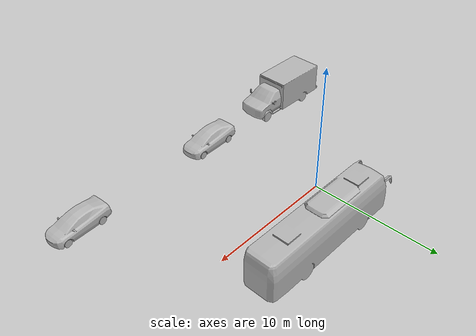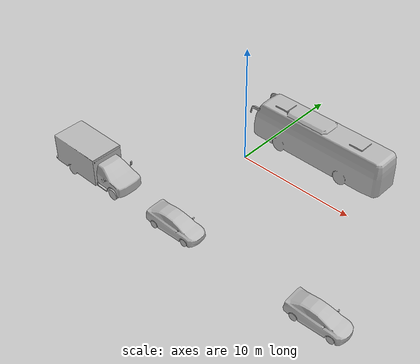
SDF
<sdf version="1.6">
 <world name="default">
  <model name="ambulance_clone">
   <static>1</static>
   <link name="link">
    <collision name="collision">
     <geometry>
      <mesh><scale>0.0254 0.0254 0.0254</scale><uri>model://ambulance/meshes/ambulance.obj</uri></mesh>
     </geometry>
    </collision>
    <visual name="visual">
     <geometry>
      <mesh><scale>0.0254 0.0254 0.0254</scale><uri>model://ambulance/meshes/ambulance.obj</uri></mesh>
     </geometry>
    </visual>
   </link>
   <pose>-6.83398 -9.26281 0 0 -0 1.5601</pose>
  </model>
  <model name="bus">
   <static>1</static>
   <link name="link">
    <collision name="collision">
     <geometry><mesh><scale>0.01 0.01 0.01</scale><uri>model://bus/meshes/bus.obj</uri></mesh></geometry>
    </collision>
    <visual name="visual">
     <geometry><mesh><scale>0.01 0.01 0.01</scale><uri>model://bus/meshes/bus.obj</uri></mesh></geometry>
    </visual>
   </link>
   <pose>4.58331 3.71999 0 0 0 -1.57803</pose>
  </model>
  <model name="prius">
   <link name="base_link">
    <inertial>
     <mass>1</mass>
     <inertia><ixx>0.001</ixx><ixy>0</ixy><ixz>0</ixz><iyy>0.001</iyy><iyz>0</iyz><izz>0.001</izz></inertia>
    </inertial>
   </link>
   <link name="chassis">
    <pose>1.45 0 0 0 -0 1.57</pose>
    <inertial>
     <pose>-0 -0.002735 0.483209 0 -0 1.5708</pose>
     <mass>1371</mass>
     <inertia>
      <ixx>2591.3</ixx>
      <ixy>0.000184475</ixy>
      <ixz>-0.702035</ixz>
      <iyy>651.702</iyy>
      <iyz>2.57872e-06</iyz>
      <izz>2744.57</izz>
     </inertia>
    </inertial>
    <collision name="chassis_fixed_joint_lump__back_bumper_collision_8">
     <pose>0 2.05445 0.57787 0 -0 0</pose>
     <geometry><box><size>1.78165 0.512093 0.581427</size></box></geometry>
    </collision>
    <visual name="chassis_visual">
     <geometry>
      <mesh>
       <scale>0.01 0.01 0.01</scale>
       <uri>/home/kostas/datmo_ws/src/car_demo-master/prius_description/meshes/hybrid_body.obj</uri>
      </mesh>
     </geometry>
    </visual>
    <sensor name="center_laser_sensor" type="ray">
     <ray>
      <scan>
       <horizontal>
        <samples>360</samples>
        <resolution>1</resolution>
        <min_angle>-3.14</min_angle>
        <max_angle>3.14</max_angle>
       </horizontal>
       <vertical><samples>1</samples><min_angle>0</min_angle><max_angle>0</max_angle></vertical>
      </scan>
      <range><min>0.2</min><max>50</max><resolution>0.01</resolution></range>
     </ray>
     <plugin name="center_laser" filename="libgazebo_ros_laser.so">
      <topicName>/scan</topicName>
      <frameName>center_laser_link</frameName>
      <robotNamespace>/</robotNamespace>
     </plugin>
     <always_on>1</always_on>
     <update_rate>12</update_rate>
     <visualize>0</visualize>
     <pose>0 0.4 0.9 0 0 -1.5707</pose>
    </sensor>
   </link>
   <joint name="base_link_connection" type="revolute">
    <child>chassis</child>
    <parent>base_link</parent>
    <axis>
     <limit><lower>0</lower><upper>0</upper></limit>
     <dynamics>
      <damping>0</damping>
      <friction>0</friction>
      <spring_reference>0</spring_reference>
      <spring_stiffness>0</spring_stiffness>
     </dynamics>
     <use_parent_model_frame>1</use_parent_model_frame>
     <xyz>0 0 1</xyz>
    </axis>
    <physics><ode><limit><cfm>0</cfm><erp>0.2</erp></limit></ode></physics>
   </joint>
   <link name="fl_axle">
    <pose>2.86061 0.765877 0.3 0 -0 1.57</pose>
    <inertial>
     <mass>1</mass>
     <inertia><ixx>0.004</ixx><ixy>0</ixy><ixz>0</ixz><iyy>0.004</iyy><iyz>0</iyz><izz>0.004</izz></inertia>
    </inertial>
   </link>
   <joint name="front_left_steer_joint" type="revolute">
    <child>fl_axle</child>
    <parent>chassis</parent>
    <axis>
     <xyz>0 0 1</xyz>
     <limit><lower>-1e+16</lower><upper>1e+16</upper></limit>
     <dynamics><spring_reference>0</spring_reference><spring_stiffness>0</spring_stiffness></dynamics>
     <use_parent_model_frame>1</use_parent_model_frame>
    </axis>
   </joint>
   <link name="front_left_wheel">
    <pose>2.86061 0.765877 0.3 0 -0 1.57</pose>
    <inertial>
     <mass>11</mass>
     <inertia>
      <ixx>0.586312</ixx>
      <ixy>0</ixy>
      <ixz>0</ixz>
      <iyy>0.335529</iyy>
      <iyz>0</iyz>
      <izz>0.335529</izz>
     </inertia>
    </inertial>
    <collision name="front_left_wheel_collision_collision">
     <geometry><sphere><radius>0.31265</radius></sphere></geometry>
     <surface>
      <contact><ode><kp>1e+08</kp><min_depth>0.005</min_depth></ode></contact>
      <friction><ode><mu>0.9</mu><mu2>0.9</mu2></ode></friction>
     </surface>
    </collision>
    <visual name="front_left_wheel_visual">
     <geometry>
      <mesh>
       <scale>0.01 0.01 0.01</scale>
       <uri>/home/kostas/datmo_ws/src/car_demo-master/prius_description/meshes/wheel.obj</uri>
      </mesh>
     </geometry>
     <material><script><uri>__default__</uri><name>__default__</name></script></material>
    </visual>
   </link>
   <joint name="front_left_wheel_joint" type="revolute">
    <child>front_left_wheel</child>
    <parent>fl_axle</parent>
    <axis>
     <xyz>0.000796 1 0</xyz>
     <limit><lower>-1e+16</lower><upper>1e+16</upper></limit>
     <dynamics><spring_reference>0</spring_reference><spring_stiffness>0</spring_stiffness></dynamics>
     <use_parent_model_frame>1</use_parent_model_frame>
    </axis>
   </joint>
   <link name="fr_axle">
    <pose>2.85939 -0.768123 0.3 0 -0 1.57</pose>
    <inertial>
     <mass>1</mass>
     <inertia><ixx>0.004</ixx><ixy>0</ixy><ixz>0</ixz><iyy>0.004</iyy><iyz>0</iyz><izz>0.004</izz></inertia>
    </inertial>
   </link>
   <joint name="front_right_steer_joint" type="revolute">
    <child>fr_axle</child>
    <parent>chassis</parent>
    <axis>
     <xyz>0 0 1</xyz>
     <limit><lower>-1e+16</lower><upper>1e+16</upper></limit>
     <dynamics><spring_reference>0</spring_reference><spring_stiffness>0</spring_stiffness></dynamics>
     <use_parent_model_frame>1</use_parent_model_frame>
    </axis>
   </joint>
   <link name="front_right_wheel">
    <pose>2.85939 -0.768123 0.3 0 -0 1.57</pose>
    <inertial>
     <mass>11</mass>
     <inertia>
      <ixx>0.586312</ixx>
      <ixy>0</ixy>
      <ixz>0</ixz>
      <iyy>0.335529</iyy>
      <iyz>0</iyz>
      <izz>0.335529</izz>
     </inertia>
    </inertial>
    <collision name="front_right_wheel_collision_collision">
     <geometry><sphere><radius>0.31265</radius></sphere></geometry>
     <surface>
      <contact><ode><kp>1e+08</kp><min_depth>0.005</min_depth></ode></contact>
      <friction><ode><mu>0.9</mu><mu2>0.9</mu2></ode></friction>
     </surface>
    </collision>
    <visual name="front_right_wheel_visual">
     <geometry>
      <mesh>
       <scale>0.01 0.01 0.01</scale>
       <uri>/home/kostas/datmo_ws/src/car_demo-master/prius_description/meshes/wheel.obj</uri>
      </mesh>
     </geometry>
     <material><script><uri>__default__</uri><name>__default__</name></script></material>
    </visual>
   </link>
   <joint name="front_right_wheel_joint" type="revolute">
    <child>front_right_wheel</child>
    <parent>fr_axle</parent>
    <axis>
     <xyz>0.000796 1 0</xyz>
     <limit><lower>-1e+16</lower><upper>1e+16</upper></limit>
     <dynamics><spring_reference>0</spring_reference><spring_stiffness>0</spring_stiffness></dynamics>
     <use_parent_model_frame>1</use_parent_model_frame>
    </axis>
   </joint>
   <link name="rear_left_wheel">
    <pose>0.000632 0.794154 0.3 0 -0 1.57</pose>
    <inertial>
     <mass>11</mass>
     <inertia>
      <ixx>0.586312</ixx>
      <ixy>0</ixy>
      <ixz>0</ixz>
      <iyy>0.335529</iyy>
      <iyz>0</iyz>
      <izz>0.335529</izz>
     </inertia>
    </inertial>
    <collision name="rear_left_wheel_collision_collision">
     <geometry><sphere><radius>0.31265</radius></sphere></geometry>
     <surface>
      <contact><ode><kp>1e+08</kp><min_depth>0.005</min_depth></ode></contact>
      <friction><ode><mu>0.9</mu><mu2>0.9</mu2></ode></friction>
     </surface>
    </collision>
    <visual name="rear_left_wheel_visual">
     <geometry>
      <mesh>
       <scale>0.01 0.01 0.01</scale>
       <uri>/home/kostas/datmo_ws/src/car_demo-master/prius_description/meshes/wheel.obj</uri>
      </mesh>
     </geometry>
     <material><script><uri>__default__</uri><name>__default__</name></script></material>
    </visual>
   </link>
   <joint name="rear_left_wheel_joint" type="revolute">
    <child>rear_left_wheel</child>
    <parent>chassis</parent>
    <axis>
     <xyz>0.000796 1 0</xyz>
     <limit><lower>-1e+16</lower><upper>1e+16</upper></limit>
     <dynamics><spring_reference>0</spring_reference><spring_stiffness>0</spring_stiffness></dynamics>
     <use_parent_model_frame>1</use_parent_model_frame>
    </axis>
   </joint>
   <link name="rear_right_wheel">
    <pose>-0.000631 -0.791845 0.3 0 -0 1.57</pose>
    <inertial>
     <mass>11</mass>
     <inertia>
      <ixx>0.586312</ixx>
      <ixy>0</ixy>
      <ixz>0</ixz>
      <iyy>0.335529</iyy>
      <iyz>0</iyz>
      <izz>0.335529</izz>
     </inertia>
    </inertial>
    <collision name="rear_right_wheel_collision_collision">
     <geometry><sphere><radius>0.31265</radius></sphere></geometry>
     <surface>
      <contact><ode><kp>1e+08</kp><min_depth>0.005</min_depth></ode></contact>
      <friction><ode><mu>0.9</mu><mu2>0.9</mu2></ode></friction>
     </surface>
    </collision>
    <visual name="rear_right_wheel_visual">
     <geometry>
      <mesh>
       <scale>0.01 0.01 0.01</scale>
       <uri>/home/kostas/datmo_ws/src/car_demo-master/prius_description/meshes/wheel.obj</uri>
      </mesh>
     </geometry>
     <material><script><uri>__default__</uri><name>__default__</name></script></material>
    </visual>
   </link>
   <joint name="rear_right_wheel_joint" type="revolute">
    <child>rear_right_wheel</child>
    <parent>chassis</parent>
    <axis>
     <xyz>0.000796 1 0</xyz>
     <limit><lower>-1e+16</lower><upper>1e+16</upper></limit>
     <dynamics><spring_reference>0</spring_reference><spring_stiffness>0</spring_stiffness></dynamics>
     <use_parent_model_frame>1</use_parent_model_frame>
    </axis>
   </joint>
   <link name="steering_wheel">
    <pose>2.07815 0.357234 0.988243 -1.3021 0 1.57</pose>
    <inertial>
     <mass>1</mass>
     <inertia><ixx>0.145833</ixx><ixy>0</ixy><ixz>0</ixz><iyy>0.145833</iyy><iyz>0</iyz><izz>0.125</izz></inertia>
    </inertial>
    <visual name="steering_wheel_visual">
     <pose>0 0 0 1.3021 -0 0</pose>
     <geometry>
      <mesh>
       <scale>0.01 0.01 0.01</scale>
       <uri>/home/kostas/datmo_ws/src/car_demo-master/prius_description/meshes/steering_wheel.obj</uri>
      </mesh>
     </geometry>
    </visual>
   </link>
   <joint name="steering_joint" type="revolute">
    <child>steering_wheel</child>
    <parent>chassis</parent>
    <axis>
     <xyz>-0.964118 0.000768 0.265474</xyz>
     <limit><lower>-1e+16</lower><upper>1e+16</upper></limit>
     <dynamics><spring_reference>0</spring_reference><spring_stiffness>0</spring_stiffness></dynamics>
     <use_parent_model_frame>1</use_parent_model_frame>
    </axis>
   </joint>
   <plugin name="pruis_hybrid_drive" filename="libActor.so">
    <chassis>chassis</chassis>
    <front_left_wheel>front_left_wheel_joint</front_left_wheel>
    <front_right_wheel>front_right_wheel_joint</front_right_wheel>
    <front_left_wheel_steering>front_left_steer_joint</front_left_wheel_steering>
    <front_right_wheel_steering>front_right_steer_joint</front_right_wheel_steering>
    <back_left_wheel>rear_left_wheel_joint</back_left_wheel>
    <back_right_wheel>rear_right_wheel_joint</back_right_wheel>
    <steering_wheel>steering_joint</steering_wheel>
    <chassis_aero_force_gain>0.63045</chassis_aero_force_gain>
    <front_torque>859.4004393000001</front_torque>
    <back_torque>0</back_torque>
    <front_brake_torque>1031.28052716</front_brake_torque>
    <back_brake_torque>687.5203514400001</back_brake_torque>
    <max_speed>37.998337013956565</max_speed>
    <min_gas_flow>8.981854013171626e-05</min_gas_flow>
    <gas_efficiency>0.371</gas_efficiency>
    <battery_charge_watt_hours>291</battery_charge_watt_hours>
    <battery_discharge_watt_hours>214</battery_discharge_watt_hours>
    <max_steer>0.8458</max_steer>
    <flwheel_steering_p_gain>1e4</flwheel_steering_p_gain>
    <frwheel_steering_p_gain>1e4</frwheel_steering_p_gain>
    <flwheel_steering_i_gain>0</flwheel_steering_i_gain>
    <frwheel_steering_i_gain>0</frwheel_steering_i_gain>
    <flwheel_steering_d_gain>3e2</flwheel_steering_d_gain>
    <frwheel_steering_d_gain>3e2</frwheel_steering_d_gain>
    <robotNamespace>/</robotNamespace>
   </plugin>
   <plugin name="joint_state_publisher" filename="libgazebo_ros_joint_state_publisher.so">
    <jointName>rear_right_wheel_joint, rear_left_wheel_joint, front_right_wheel_joint, front_left_wheel_joint, front_right_steer_joint, front_left_steer_joint, steering_joint</jointName>
    <updateRate>100.0</updateRate>
    <alwaysOn>1</alwaysOn>
    <robotNamespace>/</robotNamespace>
   </plugin>
   <static>0</static>
   <plugin name="p3d" filename="libgazebo_ros_p3d.so">
    <bodyName>base_link</bodyName>
    <topicName>mocap_pose</topicName>
    <frameName>map</frameName>
    <updateRate>100.0</updateRate>
    <robotNamespace>/</robotNamespace>
   </plugin>
   <pose>0.438366 -9.47851 0.006903 0 0.000236 0.029035</pose>
  </model>
  <model name="prius_clone">
   <link name="base_link">
    <inertial>
     <mass>1</mass>
     <inertia><ixx>0.001</ixx><ixy>0</ixy><ixz>0</ixz><iyy>0.001</iyy><iyz>0</iyz><izz>0.001</izz></inertia>
    </inertial>
   </link>
   <link name="chassis">
    <pose>1.45 0 0 0 -0 1.57</pose>
    <inertial>
     <pose>-0 -0.002735 0.483209 0 -0 1.5708</pose>
     <mass>1371</mass>
     <inertia>
      <ixx>2591.3</ixx>
      <ixy>0.000184475</ixy>
      <ixz>-0.702035</ixz>
      <iyy>651.702</iyy>
      <iyz>2.57872e-06</iyz>
      <izz>2744.57</izz>
     </inertia>
    </inertial>
    <collision name="chassis_collision">
     <pose>0 0.05 0.625 0 -0 0</pose>
     <geometry><box><size>1.7526 2.1 0.95</size></box></geometry>
    </collision>
    <collision name="chassis_fixed_joint_lump__front_bumper_collision_1">
     <pose>0 -2 0.458488 0 -0 0</pose>
     <geometry><box><size>1.33728 0.48 0.566691</size></box></geometry>
    </collision>
    <collision name="chassis_fixed_joint_lump__hood_collision_2">
     <pose>0 -1.90084 0.676305 0.341247 -0 0</pose>
     <geometry><box><size>1.59797 0.493107 0.265468</size></box></geometry>
    </collision>
    <collision name="chassis_fixed_joint_lump__windshield_collision_3">
     <pose>0 -0.875105 1.03227 0.335476 -0 0</pose>
     <geometry><box><size>1.16838 1.65425 0.272347</size></box></geometry>
    </collision>
    <collision name="chassis_fixed_joint_lump__top_front_collision_4">
     <pose>0 0.161236 1.38604 0.13503 -0 0</pose>
     <geometry><box><size>1.27915 0.625988 0.171868</size></box></geometry>
    </collision>
    <collision name="chassis_fixed_joint_lump__top_rear_collision_5">
     <pose>0 0.817696 1.36007 -0.068997 0 0</pose>
     <geometry><box><size>1.28513 0.771189 0.226557</size></box></geometry>
    </collision>
    <collision name="chassis_fixed_joint_lump__rear_window_collision_6">
     <pose>0 1.64053 1.17513 -0.262017 0 0</pose>
     <geometry><box><size>1.26785 1.11634 0.244286</size></box></geometry>
    </collision>
    <collision name="chassis_fixed_joint_lump__trunk_collision_7">
     <pose>0 1.63706 0.88818 0 -0 0</pose>
     <geometry><box><size>1.78806 1.13899 0.482746</size></box></geometry>
    </collision>
    <collision name="chassis_fixed_joint_lump__back_bumper_collision_8">
     <pose>0 2.05445 0.57787 0 -0 0</pose>
     <geometry><box><size>1.78165 0.512093 0.581427</size></box></geometry>
    </collision>
    <visual name="chassis_visual">
     <geometry>
      <mesh>
       <scale>0.01 0.01 0.01</scale>
       <uri>/home/kostas/datmo_ws/src/car_demo-master/prius_description/meshes/hybrid_body.obj</uri>
      </mesh>
     </geometry>
    </visual>
   </link>
   <joint name="base_link_connection" type="revolute">
    <child>chassis</child>
    <parent>base_link</parent>
    <axis>
     <limit><lower>0</lower><upper>0</upper></limit>
     <dynamics>
      <damping>0</damping>
      <friction>0</friction>
      <spring_reference>0</spring_reference>
      <spring_stiffness>0</spring_stiffness>
     </dynamics>
     <use_parent_model_frame>1</use_parent_model_frame>
     <xyz>0 0 1</xyz>
    </axis>
    <physics><ode><limit><cfm>0</cfm><erp>0.2</erp></limit></ode></physics>
   </joint>
   <link name="fl_axle">
    <pose>2.86061 0.765877 0.3 0 -0 1.57</pose>
    <inertial>
     <mass>1</mass>
     <inertia><ixx>0.004</ixx><ixy>0</ixy><ixz>0</ixz><iyy>0.004</iyy><iyz>0</iyz><izz>0.004</izz></inertia>
    </inertial>
   </link>
   <joint name="front_left_steer_joint" type="revolute">
    <child>fl_axle</child>
    <parent>chassis</parent>
    <axis>
     <xyz>0 0 1</xyz>
     <limit><lower>-1e+16</lower><upper>1e+16</upper></limit>
     <dynamics><spring_reference>0</spring_reference><spring_stiffness>0</spring_stiffness></dynamics>
     <use_parent_model_frame>1</use_parent_model_frame>
    </axis>
   </joint>
   <link name="front_left_wheel">
    <pose>2.86061 0.765877 0.3 0 -0 1.57</pose>
    <inertial>
     <mass>11</mass>
     <inertia>
      <ixx>0.586312</ixx>
      <ixy>0</ixy>
      <ixz>0</ixz>
      <iyy>0.335529</iyy>
      <iyz>0</iyz>
      <izz>0.335529</izz>
     </inertia>
    </inertial>
    <collision name="front_left_wheel_collision_collision">
     <geometry><sphere><radius>0.31265</radius></sphere></geometry>
     <surface>
      <contact><ode><kp>1e+08</kp><min_depth>0.005</min_depth></ode></contact>
      <friction><ode><mu>0.9</mu><mu2>0.9</mu2></ode></friction>
     </surface>
    </collision>
    <visual name="front_left_wheel_visual">
     <geometry>
      <mesh>
       <scale>0.01 0.01 0.01</scale>
       <uri>/home/kostas/datmo_ws/src/car_demo-master/prius_description/meshes/wheel.obj</uri>
      </mesh>
     </geometry>
     <material><script><uri>__default__</uri><name>__default__</name></script></material>
    </visual>
   </link>
   <joint name="front_left_wheel_joint" type="revolute">
    <child>front_left_wheel</child>
    <parent>fl_axle</parent>
    <axis>
     <xyz>0.000796 1 0</xyz>
     <limit><lower>-1e+16</lower><upper>1e+16</upper></limit>
     <dynamics><spring_reference>0</spring_reference><spring_stiffness>0</spring_stiffness></dynamics>
     <use_parent_model_frame>1</use_parent_model_frame>
    </axis>
   </joint>
   <link name="fr_axle">
    <pose>2.85939 -0.768123 0.3 0 -0 1.57</pose>
    <inertial>
     <mass>1</mass>
     <inertia><ixx>0.004</ixx><ixy>0</ixy><ixz>0</ixz><iyy>0.004</iyy><iyz>0</iyz><izz>0.004</izz></inertia>
    </inertial>
   </link>
   <joint name="front_right_steer_joint" type="revolute">
    <child>fr_axle</child>
    <parent>chassis</parent>
    <axis>
     <xyz>0 0 1</xyz>
     <limit><lower>-1e+16</lower><upper>1e+16</upper></limit>
     <dynamics><spring_reference>0</spring_reference><spring_stiffness>0</spring_stiffness></dynamics>
     <use_parent_model_frame>1</use_parent_model_frame>
    </axis>
   </joint>
   <link name="front_right_wheel">
    <pose>2.85939 -0.768123 0.3 0 -0 1.57</pose>
    <inertial>
     <mass>11</mass>
     <inertia>
      <ixx>0.586312</ixx>
      <ixy>0</ixy>
      <ixz>0</ixz>
      <iyy>0.335529</iyy>
      <iyz>0</iyz>
      <izz>0.335529</izz>
     </inertia>
    </inertial>
    <collision name="front_right_wheel_collision_collision">
     <geometry><sphere><radius>0.31265</radius></sphere></geometry>
     <surface>
      <contact><ode><kp>1e+08</kp><min_depth>0.005</min_depth></ode></contact>
      <friction><ode><mu>0.9</mu><mu2>0.9</mu2></ode></friction>
     </surface>
    </collision>
    <visual name="front_right_wheel_visual">
     <geometry>
      <mesh>
       <scale>0.01 0.01 0.01</scale>
       <uri>/home/kostas/datmo_ws/src/car_demo-master/prius_description/meshes/wheel.obj</uri>
      </mesh>
     </geometry>
     <material><script><uri>__default__</uri><name>__default__</name></script></material>
    </visual>
   </link>
   <joint name="front_right_wheel_joint" type="revolute">
    <child>front_right_wheel</child>
    <parent>fr_axle</parent>
    <axis>
     <xyz>0.000796 1 0</xyz>
     <limit><lower>-1e+16</lower><upper>1e+16</upper></limit>
     <dynamics><spring_reference>0</spring_reference><spring_stiffness>0</spring_stiffness></dynamics>
     <use_parent_model_frame>1</use_parent_model_frame>
    </axis>
   </joint>
   <link name="rear_left_wheel">
    <pose>0.000632 0.794154 0.3 0 -0 1.57</pose>
    <inertial>
     <mass>11</mass>
     <inertia>
      <ixx>0.586312</ixx>
      <ixy>0</ixy>
      <ixz>0</ixz>
      <iyy>0.335529</iyy>
      <iyz>0</iyz>
      <izz>0.335529</izz>
     </inertia>
    </inertial>
    <collision name="rear_left_wheel_collision_collision">
     <geometry><sphere><radius>0.31265</radius></sphere></geometry>
     <surface>
      <contact><ode><kp>1e+08</kp><min_depth>0.005</min_depth></ode></contact>
      <friction><ode><mu>0.9</mu><mu2>0.9</mu2></ode></friction>
     </surface>
    </collision>
    <visual name="rear_left_wheel_visual">
     <geometry>
      <mesh>
       <scale>0.01 0.01 0.01</scale>
       <uri>/home/kostas/datmo_ws/src/car_demo-master/prius_description/meshes/wheel.obj</uri>
      </mesh>
     </geometry>
     <material><script><uri>__default__</uri><name>__default__</name></script></material>
    </visual>
   </link>
   <joint name="rear_left_wheel_joint" type="revolute">
    <child>rear_left_wheel</child>
    <parent>chassis</parent>
    <axis>
     <xyz>0.000796 1 0</xyz>
     <limit><lower>-1e+16</lower><upper>1e+16</upper></limit>
     <dynamics><spring_reference>0</spring_reference><spring_stiffness>0</spring_stiffness></dynamics>
     <use_parent_model_frame>1</use_parent_model_frame>
    </axis>
   </joint>
   <link name="rear_right_wheel">
    <pose>-0.000631 -0.791845 0.3 0 -0 1.57</pose>
    <inertial>
     <mass>11</mass>
     <inertia>
      <ixx>0.586312</ixx>
      <ixy>0</ixy>
      <ixz>0</ixz>
      <iyy>0.335529</iyy>
      <iyz>0</iyz>
      <izz>0.335529</izz>
     </inertia>
    </inertial>
    <collision name="rear_right_wheel_collision_collision">
     <geometry><sphere><radius>0.31265</radius></sphere></geometry>
     <surface>
      <contact><ode><kp>1e+08</kp><min_depth>0.005</min_depth></ode></contact>
      <friction><ode><mu>0.9</mu><mu2>0.9</mu2></ode></friction>
     </surface>
    </collision>
    <visual name="rear_right_wheel_visual">
     <geometry>
      <mesh>
       <scale>0.01 0.01 0.01</scale>
       <uri>/home/kostas/datmo_ws/src/car_demo-master/prius_description/meshes/wheel.obj</uri>
      </mesh>
     </geometry>
     <material><script><uri>__default__</uri><name>__default__</name></script></material>
    </visual>
   </link>
   <joint name="rear_right_wheel_joint" type="revolute">
    <child>rear_right_wheel</child>
    <parent>chassis</parent>
    <axis>
     <xyz>0.000796 1 0</xyz>
     <limit><lower>-1e+16</lower><upper>1e+16</upper></limit>
     <dynamics><spring_reference>0</spring_reference><spring_stiffness>0</spring_stiffness></dynamics>
     <use_parent_model_frame>1</use_parent_model_frame>
    </axis>
   </joint>
   <link name="steering_wheel">
    <pose>2.07815 0.357234 0.988243 -1.3021 0 1.57</pose>
    <inertial>
     <mass>1</mass>
     <inertia><ixx>0.145833</ixx><ixy>0</ixy><ixz>0</ixz><iyy>0.145833</iyy><iyz>0</iyz><izz>0.125</izz></inertia>
    </inertial>
    <visual name="steering_wheel_visual">
     <pose>0 0 0 1.3021 -0 0</pose>
     <geometry>
      <mesh>
       <scale>0.01 0.01 0.01</scale>
       <uri>/home/kostas/datmo_ws/src/car_demo-master/prius_description/meshes/steering_wheel.obj</uri>
      </mesh>
     </geometry>
    </visual>
   </link>
   <joint name="steering_joint" type="revolute">
    <child>steering_wheel</child>
    <parent>chassis</parent>
    <axis>
     <xyz>-0.964118 0.000768 0.265474</xyz>
     <limit><lower>-1e+16</lower><upper>1e+16</upper></limit>
     <dynamics><spring_reference>0</spring_reference><spring_stiffness>0</spring_stiffness></dynamics>
     <use_parent_model_frame>1</use_parent_model_frame>
    </axis>
   </joint>
   <plugin name="actorhybrid_drive" filename="libActor.so">
    <controlTopic>actor</controlTopic>
    <chassis>chassis</chassis>
    <front_left_wheel>front_left_wheel_joint</front_left_wheel>
    <front_right_wheel>front_right_wheel_joint</front_right_wheel>
    <front_left_wheel_steering>front_left_steer_joint</front_left_wheel_steering>
    <front_right_wheel_steering>front_right_steer_joint</front_right_wheel_steering>
    <back_left_wheel>rear_left_wheel_joint</back_left_wheel>
    <back_right_wheel>rear_right_wheel_joint</back_right_wheel>
    <steering_wheel>steering_joint</steering_wheel>
    <chassis_aero_force_gain>0.63045</chassis_aero_force_gain>
    <front_torque>700.4004393000001</front_torque>
    <back_torque>0</back_torque>
    <front_brake_torque>1031.28052716</front_brake_torque>
    <back_brake_torque>687.5203514400001</back_brake_torque>
    <max_speed>37.998337013956565</max_speed>
    <min_gas_flow>8.981854013171626e-05</min_gas_flow>
    <gas_efficiency>0.371</gas_efficiency>
    <battery_charge_watt_hours>291</battery_charge_watt_hours>
    <battery_discharge_watt_hours>214</battery_discharge_watt_hours>
    <max_steer>0.8458</max_steer>
    <flwheel_steering_p_gain>1e4</flwheel_steering_p_gain>
    <frwheel_steering_p_gain>1e4</frwheel_steering_p_gain>
    <flwheel_steering_i_gain>0</flwheel_steering_i_gain>
    <frwheel_steering_i_gain>0</frwheel_steering_i_gain>
    <flwheel_steering_d_gain>3e2</flwheel_steering_d_gain>
    <frwheel_steering_d_gain>3e2</frwheel_steering_d_gain>
    <robotNamespace>/</robotNamespace>
   </plugin>
   <plugin name="joint_state_publisher" filename="libgazebo_ros_joint_state_publisher.so">
    <jointName>rear_right_wheel_joint, rear_left_wheel_joint, front_right_wheel_joint, front_left_wheel_joint, front_right_steer_joint, front_left_steer_joint, steering_joint</jointName>
    <updateRate>100.0</updateRate>
    <alwaysOn>1</alwaysOn>
    <robotNamespace>/</robotNamespace>
   </plugin>
   <static>0</static>
   <plugin name="p3d" filename="libgazebo_ros_p3d.so">
    <bodyName>base_link</bodyName>
    <topicName>robot_1</topicName>
    <frameName>map</frameName>
    <updateRate>100.0</updateRate>
    <robotNamespace>/</robotNamespace>
   </plugin>
   <pose>13.0535 -9.30478 0.008168 -0.00022 0.000679 0.041496</pose>
  </model>
 </world>
</sdf>
